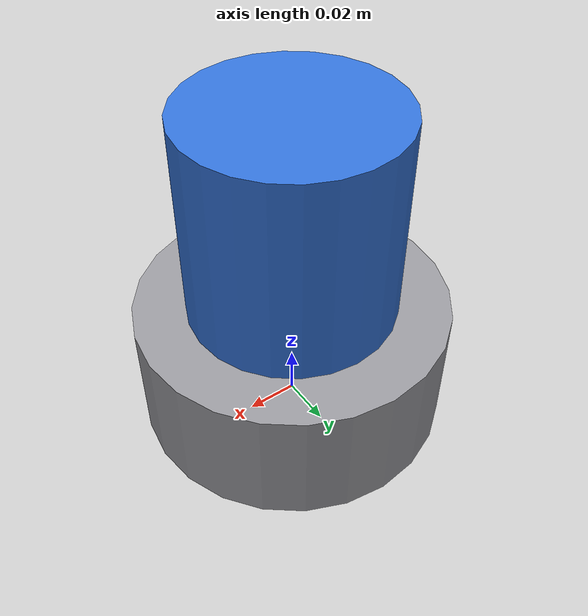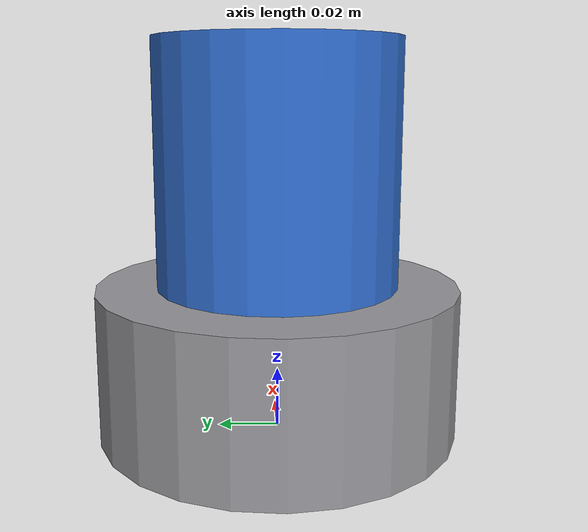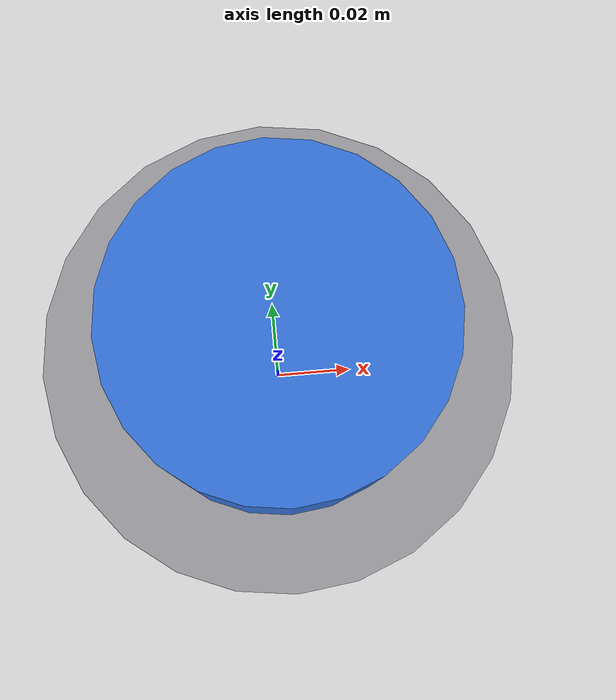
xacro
<?xml version="1.0"?>
<!-- Seven-DOF serial manipulator with a two-finger gripper. Every joint frame sits at the bottom of the
     link it moves; links extend along their local +z axis. Units: metres, radians, kilograms. -->
<robot name="seven_dof_arm" xmlns:xacro="http://www.ros.org/wiki/xacro">

  <xacro:include filename="inertial.xacro"/>

  <!-- ===== parameters ===== -->
  <xacro:property name="effort" value="30"/>
  <xacro:property name="velocity" value="1.0"/>

  <material name="grey"><color rgba="0.6 0.6 0.62 1"/></material>
  <material name="blue"><color rgba="0.2 0.45 0.85 1"/></material>
  <material name="orange"><color rgba="0.95 0.55 0.15 1"/></material>

  <!-- ===== segment macros ===== -->
  <!-- A revolute joint plus a cylindrical link standing on it. -->
  <xacro:macro name="cylinder_segment" params="name parent joint_z axis lower upper r h m color">
    <joint name="${name}_joint" type="revolute">
      <parent link="${parent}"/>
      <child link="${name}_link"/>
      <origin xyz="0 0 ${joint_z}" rpy="0 0 0"/>
      <axis xyz="${axis}"/>
      <limit lower="${lower}" upper="${upper}" effort="${effort}" velocity="${velocity}"/>
    </joint>
    <link name="${name}_link">
      <visual>
        <origin xyz="0 0 ${h/2}" rpy="0 0 0"/>
        <geometry><cylinder radius="${r}" length="${h}"/></geometry>
        <material name="${color}"/>
      </visual>
      <collision>
        <origin xyz="0 0 ${h/2}" rpy="0 0 0"/>
        <geometry><cylinder radius="${r}" length="${h}"/></geometry>
      </collision>
      <xacro:cylinder_inertial m="${m}" r="${r}" h="${h}">
        <origin xyz="0 0 ${h/2}" rpy="0 0 0"/>
      </xacro:cylinder_inertial>
    </link>
  </xacro:macro>

  <!-- TODO 1: box_segment — same idea as cylinder_segment, but the link is a box of size x by y by z
       (params: name parent joint_z axis lower upper x y z m color). Use the box_inertial macro. -->
  <xacro:macro name="box_segment" params="name parent joint_z axis lower upper x y z m color">
  </xacro:macro>

  <!-- ===== the arm ===== -->
  <link name="base_link">
    <visual>
      <origin xyz="0 0 0.025" rpy="0 0 0"/>
      <geometry><cylinder radius="0.06" length="0.05"/></geometry>
      <material name="grey"/>
    </visual>
    <collision>
      <origin xyz="0 0 0.025" rpy="0 0 0"/>
      <geometry><cylinder radius="0.06" length="0.05"/></geometry>
    </collision>
    <xacro:cylinder_inertial m="1.0" r="0.06" h="0.05">
      <origin xyz="0 0 0.025" rpy="0 0 0"/>
    </xacro:cylinder_inertial>
  </link>

  <xacro:cylinder_segment name="shoulder_pan" parent="base_link" joint_z="0.05" axis="0 0 1"
                          lower="-2.6" upper="2.6" r="0.04" h="0.08" m="0.5" color="blue"/>

  <!-- TODO 4: grasp_frame — a geometry-less link fixed to gripper_roll_link 0.10 m up its z axis,
       joint name grasp_frame_joint. -->

</robot>

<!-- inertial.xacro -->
<!-- Inertia of uniform solid bodies, centred on the body. Use the same origin as the visual. -->
<robot xmlns:xacro="http://www.ros.org/wiki/xacro">

  <xacro:macro name="box_inertial" params="m x y z *origin">
    <inertial>
      <xacro:insert_block name="origin"/>
      <mass value="${m}"/>
      <inertia ixx="${m * (y*y + z*z) / 12}" ixy="0" ixz="0"
               iyy="${m * (x*x + z*z) / 12}" iyz="0"
               izz="${m * (x*x + y*y) / 12}"/>
    </inertial>
  </xacro:macro>

  <!-- A cylinder whose axis is the z axis of the given origin. -->
  <xacro:macro name="cylinder_inertial" params="m r h *origin">
    <inertial>
      <xacro:insert_block name="origin"/>
      <mass value="${m}"/>
      <inertia ixx="${m * (3*r*r + h*h) / 12}" ixy="0" ixz="0"
               iyy="${m * (3*r*r + h*h) / 12}" iyz="0"
               izz="${m * r*r / 2}"/>
    </inertial>
  </xacro:macro>

  <xacro:macro name="sphere_inertial" params="m r *origin">
    <inertial>
      <xacro:insert_block name="origin"/>
      <mass value="${m}"/>
      <inertia ixx="${2 * m * r*r / 5}" ixy="0" ixz="0" iyy="${2 * m * r*r / 5}" iyz="0" izz="${2 * m * r*r / 5}"/>
    </inertial>
  </xacro:macro>

</robot>
